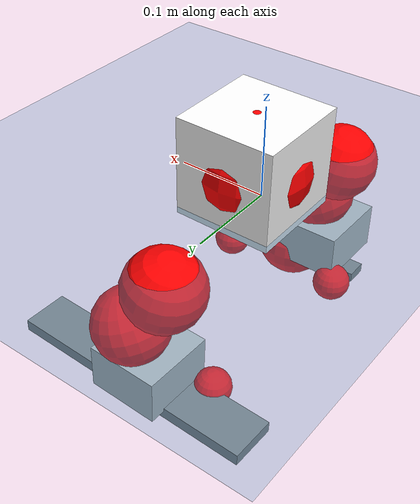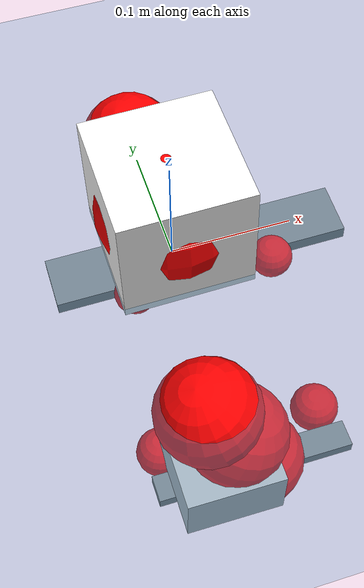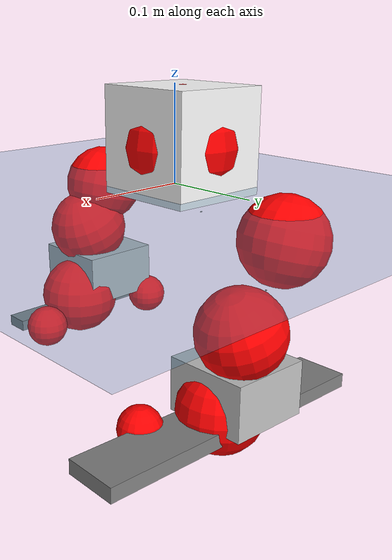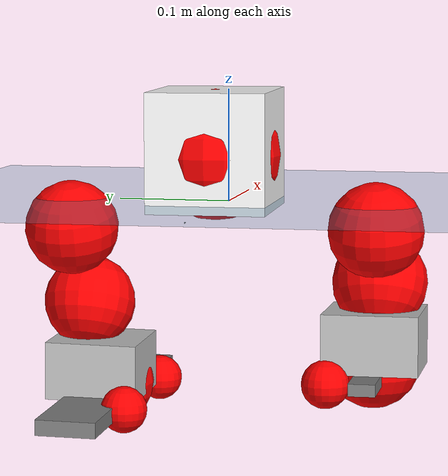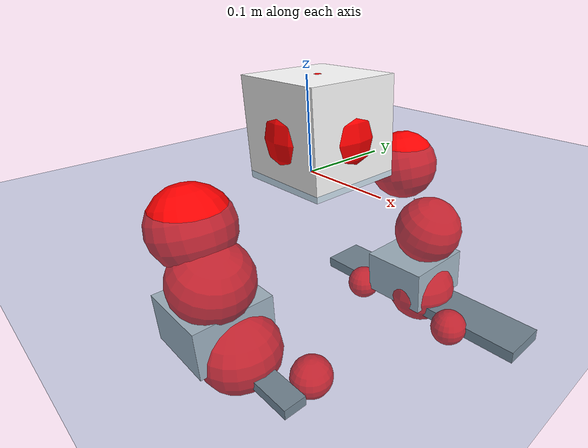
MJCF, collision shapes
<mujoco model="pi_12dof_release_v1">
  <compiler angle="radian" assetdir="assets" balanceinertia="true" inertiafromgeom="false"/>

  <option timestep="0.005" density="1.2" viscosity="2e-05"/>

  <size nkey="1"/>

  <visual>
    <quality shadowsize="8192"/>
    <map shadowclip="0.5"/>
  </visual>

  <default>
    <default class="/">
      <joint armature="0.01" damping="0.01" frictionloss="0.01"/>
      <geom contype="0" conaffinity="0" group="1" solref="-1000 -80"/>
      <site size="0.01 0.005 0.005" group="5"/>
      <general forcelimited="true" biastype="affine" gainprm="20" biasprm="0 -20 -0.5"/>
      <default class="foot">
        <geom size="0.0845 0.036 0.005" type="box" condim="6" group="4" priority="1" friction="0.9 0.2 0.2" solimp="0.015 1 0.005"/>
      </default>
      <default class="reward_collision_sphere">
        <geom group="5" rgba="1 0 0 1"/>
      </default>
    </default>
  </default>

  <asset>
    <texture type="skybox" colorspace="auto" name="//unnamed_texture_0" builtin="gradient" rgb1="0.95 0.95 0.95" rgb2="0.95 0.95 0.95" width="100" height="600"/>
    <texture type="2d" colorspace="auto" name="texplane" builtin="checker" rgb1="0.345 0.575 0.748" rgb2="0.345 0.575 0.748" markrgb="1 1 1" width="512" height="512"/>
    <material name="MatPlane" class="/" texture="texplane" texuniform="true" texrepeat="2 2" specular="0.9"/>
    <mesh name="baselink_1" class="/" file="baselink_1.STL"/>
    <mesh name="r_hip_pitch_link" class="/" file="r_hip_pitch_link.STL"/>
    <mesh name="r_hip_roll_link" class="/" file="r_hip_roll_link.STL"/>
    <mesh name="r_thigh_link" class="/" file="r_thigh_link.STL"/>
    <mesh name="r_calf_link" class="/" file="r_calf_link.STL"/>
    <mesh name="r_ankle_pitch_link" class="/" file="r_ankle_pitch_link.STL"/>
    <mesh name="r_ankle_roll_link" class="/" file="r_ankle_roll_link.STL"/>
    <mesh name="l_hip_pitch_link" class="/" file="l_hip_pitch_link.STL"/>
    <mesh name="l_hip_roll_link" class="/" file="l_hip_roll_link.STL"/>
    <mesh name="l_thigh_link" class="/" file="l_thigh_link.STL"/>
    <mesh name="l_calf_link" class="/" file="l_calf_link.STL"/>
    <mesh name="l_ankle_pitch_link" class="/" file="l_ankle_pitch_link.STL"/>
    <mesh name="l_ankle_roll_link" class="/" file="l_ankle_roll_link.STL"/>
  </asset>

  <worldbody>
    <geom name="floor" class="/" size="100 100 0.125" type="plane" group="0" material="MatPlane"/>
    <light name="toplight_shadow" class="/" pos="0 0 5" dir="0.0990148 0.0990148 -0.990148" type="directional" ambient="0.04 0.04 0.04" diffuse="0.55 0.55 0.55" specular="0.12 0.12 0.12"/>
    <light name="toplight_fill" class="/" pos="0 0 5" dir="0.0990148 0.0990148 -0.990148" type="directional" castshadow="false" ambient="0.04 0.04 0.04" diffuse="0.3 0.3 0.3" specular="0.08 0.08 0.08"/>
    <body name="trunk" pos="0.00246074 0.0125874 0.00805895" quat="0.99998 -0.000174699 -0.00596248 0.00210188">
      <inertial pos="0.0137682 0.0174511 0.00598876" quat="0.723025 0.00270701 -0.0290927 0.690204" mass="2.66183" diaginertia="0.0192943 0.145828 9.55647e-05"/>
      <joint name="//unnamed_joint_0" type="free"/>
      <geom name="//unnamed_geom_1" class="/" type="mesh" density="0" rgba="1 1 1 1" mesh="baselink_1"/>
      <geom name="//unnamed_geom_2" class="/" size="0.0535052 0.0535052 0.0535052" pos="0 0 0.0376524" type="box" rgba="1 1 1 1"/>
      <geom name="//unnamed_geom_3" class="reward_collision_sphere" size="0.0588557" pos="0 0 0.0329459"/>
      <site name="imu" class="/" pos="0.0233028 -0.0188037 -0.0187014" size="0.010701"/>
      <camera name="track" class="/" pos="0 -3.36148 0" quat="0.707107 0.707107 0 0" mode="trackcom"/>
      <camera name="ego_camera" class="/" pos="0.0794186 0 0.0847179" quat="-0.5 -0.5 0.5 0.5"/>
      <body name="r_hip_pitch_link" pos="-0.00445476 -0.0402254 -0.0198236" quat="0.992361 -0.00043398 -0.123365 -0.000976997">
        <inertial pos="0.00123545 -0.0781184 -0.00221971" quat="-0.025571 0.714144 0.0646474 0.696538" mass="0.401438" diaginertia="0.000139264 0.00135986 1.83944e-06"/>
        <joint name="r_hip_pitch_joint" class="/" pos="0 0 0" axis="-0.00194063 -0.999979 -0.00614297" range="-1.99013 1.02344" armature="0.0131195" damping="0" frictionloss="0.00177845"/>
        <geom name="//unnamed_geom_4" class="/" type="mesh" density="0" rgba="0.75294 0.75294 0.75294 1" mesh="r_hip_pitch_link"/>
        <geom name="//unnamed_geom_5" class="/" size="0.000535052 0.000535052 0.000535052" type="box" rgba="0.75294 0.75294 0.75294 1"/>
        <body name="r_hip_roll_link" pos="-0.0143459 -0.106336 -0.00764775" quat="0.99996 -0.00158837 0.00832474 -0.0030105">
          <inertial pos="0.000672423 -0.0175841 -0.0226866" quat="0.722539 -0.111106 -0.0607495 0.679634" mass="0.400817" diaginertia="0.000518489 0.00284297 2.89486e-06"/>
          <joint name="r_hip_roll_joint" class="/" pos="0 0 0" axis="-0.998588 0.0468342 -0.0250632" range="-0.110422 0.480831" armature="0.00241036" damping="0" frictionloss="0.0131681"/>
          <geom name="//unnamed_geom_6" class="/" type="mesh" density="0" rgba="0.75294 0.75294 0.75294 1" mesh="r_hip_roll_link"/>
          <geom name="//unnamed_geom_7" class="/" size="0.000535052 0.000535052 0.000535052" type="box" rgba="0.75294 0.75294 0.75294 1"/>
          <geom name="//unnamed_geom_8" class="reward_collision_sphere" size="0.0428042"/>
          <body name="r_thigh_link" pos="-0.00669938 -0.00647809 -0.0305249" quat="0.999998 0.000901558 -0.00133255 0.00119685">
            <inertial pos="0.0157636 0.014037 -0.00796307" quat="0.765946 0.642895 0.00120446 0.00330923" mass="0.142107" diaginertia="0.00019005 0.00116016 1.62971e-06"/>
            <joint name="r_thigh_joint" class="/" pos="0 0 0" axis="0.00126863 0.0759168 -0.997113" stiffness="0.0844013" range="0.0458356 0.943321" armature="0.00205499" damping="0.0964253" frictionloss="0.00153708"/>
            <geom name="//unnamed_geom_9" class="/" type="mesh" density="0" rgba="0.75294 0.75294 0.75294 1" mesh="r_thigh_link"/>
            <geom name="//unnamed_geom_10" class="/" size="0.000535052 0.000535052 0.000535052" type="box" rgba="0.75294 0.75294 0.75294 1"/>
            <body name="r_calf_link" pos="0.0178676 0.00544857 -0.0224182" quat="0.946804 -0.000163416 0.321805 -0.00209765">
              <inertial pos="0.00513226 -0.0111366 -0.0230697" quat="0.996666 0.00865956 -0.0738262 0.033647" mass="1.07302" diaginertia="0.0052766 0.0469356 3.47968e-06"/>
              <joint name="r_calf_joint" class="/" pos="0 0 0" axis="-0.0914058 -0.995804 0.00428898" stiffness="0.0247702" range="-1.43276 0.76727" armature="0.00968811" damping="0.0466327" frictionloss="0.00199321"/>
              <geom name="//unnamed_geom_11" class="/" type="mesh" density="0" rgba="0.75294 0.75294 0.75294 1" mesh="r_calf_link"/>
              <geom name="//unnamed_geom_12" class="/" size="0.000535052 0.000535052 0.000535052" type="box" rgba="0.75294 0.75294 0.75294 1"/>
              <geom name="//unnamed_geom_13" class="reward_collision_sphere" size="0.0428042"/>
              <body name="r_ankle_pitch_link" pos="0.00937075 0.00287952 -0.050184" quat="0.980069 6.57601e-05 -0.198655 -1.77944e-05">
                <inertial pos="-0.00557802 0.0180949 -0.0164913" quat="0.0383215 0.693219 0.0130993 0.719588" mass="0.196996" diaginertia="0.000479934 0.00298802 2.78116e-06"/>
                <joint name="r_ankle_pitch_joint" class="/" pos="0 0 0" axis="0.0150155 -0.999412 -0.0308293" stiffness="0.0119933" range="-1.04398 0.831002" armature="0.00338487" damping="0" frictionloss="0.00224802"/>
                <geom name="//unnamed_geom_14" class="/" type="mesh" density="0" rgba="0.75294 0.75294 0.75294 1" mesh="r_ankle_pitch_link"/>
                <geom name="//unnamed_geom_15" class="/" size="0.0417341 0.0428042 0.0267526" type="box" rgba="0.75294 0.75294 0.75294 1"/>
                <body name="r_ankle_roll_link" pos="0.0862685 0.00555225 -0.0159167" quat="0.999994 -0.00100228 -0.00072576 0.00308145">
                  <inertial pos="-0.0132216 -0.0120961 -0.0108021" quat="0.562055 0.456039 0.450804 0.522397" mass="0.495915" diaginertia="0.00130299 0.00898187 5.82665e-06"/>
                  <joint name="r_ankle_roll_joint" class="/" pos="0 0 0" axis="-0.995509 -0.0572025 0.0754255" range="-0.511906 -0.135516" armature="0.0132272" damping="0" frictionloss="0.00634625"/>
                  <geom name="//unnamed_geom_16" class="/" type="mesh" density="0" rgba="0.75294 0.75294 0.75294 1" mesh="r_ankle_roll_link"/>
                  <geom name="//unnamed_geom_17" class="/" type="mesh" rgba="0.75294 0.75294 0.75294 1" mesh="r_ankle_roll_link"/>
                  <geom name="right_foot" class="foot" size="0.0875487 0.0120419 0.00549957" pos="-0.0540046 0 -0.0207088"/>
                  <geom name="//unnamed_geom_19" class="reward_collision_sphere" size="0.0428042" pos="-0.0529457 0 -0.0094131"/>
                  <geom name="//unnamed_geom_20" class="reward_collision_sphere" size="0.0214021" pos="0.0158837 0.0336148 -0.0188262"/>
                  <geom name="//unnamed_geom_21" class="reward_collision_sphere" size="0.0214021" pos="-0.12707 0.0336148 -0.0188262"/>
                  <site name="right_foot" class="foot" pos="-0.0540046 0 -0.0207088" size="0.010701"/>
                </body>
              </body>
            </body>
          </body>
        </body>
      </body>
      <body name="l_hip_pitch_link" pos="0.000482921 0.0286745 -0.0292238" quat="0.992153 0.000778709 -0.125017 -0.00134144">
        <inertial pos="-0.00541698 0.098118 -0.0119788" quat="-0.0655628 0.7001 0.00901467 0.710971" mass="0.653326" diaginertia="0.000205468 0.00177666 2.22461e-06"/>
        <joint name="l_hip_pitch_joint" class="/" pos="0 0 0" axis="-0.0395003 0.999094 -0.0158396" range="-1.34179 1.44487" armature="0.0135007" damping="0" frictionloss="0.0117956"/>
        <geom name="//unnamed_geom_22" class="/" type="mesh" density="0" rgba="0.75294 0.75294 0.75294 1" mesh="l_hip_pitch_link"/>
        <geom name="//unnamed_geom_23" class="/" size="0.000535052 0.000535052 0.000535052" type="box" rgba="0.75294 0.75294 0.75294 1"/>
        <body name="l_hip_roll_link" pos="0.00124259 0.10587 -0.00719975" quat="0.999965 -0.00523234 -0.00281604 -0.00582164">
          <inertial pos="-0.0053492 -0.01832 -0.0371252" quat="0.685447 -0.132843 -0.0430119 0.714608" mass="0.583843" diaginertia="0.000508476 0.00321608 2.39966e-06"/>
          <joint name="l_hip_roll_joint" class="/" pos="0 0 0" axis="-0.997901 0.0445476 0.0470088" range="-0.44038 -0.0517088" armature="0.000970424" damping="0" frictionloss="0.0167036"/>
          <geom name="//unnamed_geom_24" class="/" type="mesh" density="0" rgba="0.75294 0.75294 0.75294 1" mesh="l_hip_roll_link"/>
          <geom name="//unnamed_geom_25" class="/" size="0.000535052 0.000535052 0.000535052" type="box" rgba="0.75294 0.75294 0.75294 1"/>
          <geom name="//unnamed_geom_26" class="reward_collision_sphere" size="0.0428042"/>
          <body name="l_thigh_link" pos="0.00975088 2.51882e-05 -0.045631" quat="0.999985 0.00466519 -0.00260706 -0.00119365">
            <inertial pos="-0.00215245 -0.0167098 -0.0180575" quat="0.682963 0.73026 0.0116077 -0.0120913" mass="0.140877" diaginertia="0.000179775 0.0013754 1.45846e-06"/>
            <joint name="l_thigh_joint" class="/" pos="0 0 0" axis="-0.0127192 0.00992937 -0.99987" range="-0.768528 0.150662" armature="0.0172059" damping="0.0882838" frictionloss="0.00625345"/>
            <geom name="//unnamed_geom_27" class="/" type="mesh" density="0" rgba="0.75294 0.75294 0.75294 1" mesh="l_thigh_link"/>
            <geom name="//unnamed_geom_28" class="/" size="0.000535052 0.000535052 0.000535052" type="box" rgba="0.75294 0.75294 0.75294 1"/>
            <body name="l_calf_link" pos="0.0175987 -0.00293456 -0.0402542" quat="0.949042 0.00804029 0.315044 -0.00102941">
              <inertial pos="-0.00350108 0.0145085 -0.0276557" quat="0.999871 0.0125082 -0.000457402 0.010074" mass="1.13766" diaginertia="0.00529741 0.0477829 3.49484e-06"/>
              <joint name="l_calf_joint" class="/" pos="0 0 0" axis="-0.0529715 0.998421 0.0187068" stiffness="0.09175" range="-0.951828 1.82276" armature="0.0154848" damping="0" frictionloss="0.00659558"/>
              <geom name="//unnamed_geom_29" class="/" type="mesh" density="0" rgba="0.75294 0.75294 0.75294 1" mesh="l_calf_link"/>
              <geom name="//unnamed_geom_30" class="/" size="0.000535052 0.000535052 0.000535052" type="box" rgba="0.75294 0.75294 0.75294 1"/>
              <geom name="//unnamed_geom_31" class="reward_collision_sphere" size="0.0428042"/>
              <body name="l_ankle_pitch_link" pos="0.0128799 -0.0140216 -0.0575481" quat="0.980643 -0.00275705 -0.19577 0.00233136">
                <inertial pos="0.00320406 0.0123869 0.00428541" quat="0.0228156 0.703992 0.0140771 0.709702" mass="0.177539" diaginertia="0.000397028 0.00298424 2.92196e-06"/>
                <joint name="l_ankle_pitch_joint" class="/" pos="0 0 0" axis="-0.00346979 0.999778 -0.0207743" range="-0.399462 1.36521" armature="0.0184369" damping="0" frictionloss="0.0171109"/>
                <geom name="//unnamed_geom_32" class="/" type="mesh" density="0" rgba="0.75294 0.75294 0.75294 1" mesh="l_ankle_pitch_link"/>
                <geom name="//unnamed_geom_33" class="/" size="0.0417341 0.0428042 0.0267526" type="box" rgba="0.75294 0.75294 0.75294 1"/>
                <body name="l_ankle_roll_link" pos="0.0681963 -0.00330034 -0.00972401" quat="0.999997 -0.00138422 0.0014803 -0.00109649">
                  <inertial pos="-0.0138301 -0.00500457 -0.0060612" quat="0.558795 0.428166 0.434735 0.561629" mass="0.529938" diaginertia="0.00134659 0.0119065 6.84176e-06"/>
                  <joint name="l_ankle_roll_joint" class="/" pos="0 0 0" axis="-0.999748 -0.00114618 -0.0224295" range="-0.502764 0.113571" armature="0.0134152" damping="0.0975089" frictionloss="0.0154246"/>
                  <geom name="//unnamed_geom_34" class="/" type="mesh" density="0" rgba="0.75294 0.75294 0.75294 1" mesh="l_ankle_roll_link"/>
                  <geom name="//unnamed_geom_35" class="/" type="mesh" rgba="0.75294 0.75294 0.75294 1" mesh="l_ankle_roll_link"/>
                  <geom name="left_foot" class="foot" size="0.150998 0.0275713 0.00714202" pos="-0.0540046 0 -0.0207088"/>
                  <geom name="//unnamed_geom_37" class="reward_collision_sphere" size="0.0428042" pos="-0.0529457 0 -0.0094131"/>
                  <geom name="//unnamed_geom_38" class="reward_collision_sphere" size="0.0214021" pos="0.0158837 -0.0336148 -0.0188262"/>
                  <geom name="//unnamed_geom_39" class="reward_collision_sphere" size="0.0214021" pos="-0.12707 -0.0336148 -0.0188262"/>
                  <site name="left_foot" class="foot" pos="-0.0540046 0 -0.0207088" size="0.010701"/>
                </body>
              </body>
            </body>
          </body>
        </body>
      </body>
    </body>
  </worldbody>

  <contact>
    <pair class="/" geom1="floor" geom2="right_foot" name="//unnamed_contact_1"/>
    <pair class="/" geom1="floor" geom2="left_foot" name="//unnamed_contact_0"/>
  </contact>

  <actuator>
    <general name="r_hip_pitch_joint" class="/" joint="r_hip_pitch_joint" forcerange="-30.4202 30.4202" gainprm="26.8292" biasprm="0 -26.8292 -0.429566"/>
    <general name="r_hip_roll_joint" class="/" joint="r_hip_roll_joint" forcerange="-7.35349 7.35349" gainprm="26.8292" biasprm="0 -26.8292 -0.429566"/>
    <general name="r_thigh_joint" class="/" joint="r_thigh_joint" forcerange="-21.522 21.522" gainprm="26.8292" biasprm="0 -26.8292 -0.429566"/>
    <general name="r_calf_joint" class="/" joint="r_calf_joint" forcerange="-18.9953 18.9953" gainprm="26.8292" biasprm="0 -26.8292 -0.429566"/>
    <general name="r_ankle_pitch_joint" class="/" joint="r_ankle_pitch_joint" forcerange="-22.5421 22.5421" gainprm="26.8292" biasprm="0 -26.8292 -0.429566"/>
    <general name="r_ankle_roll_joint" class="/" joint="r_ankle_roll_joint" forcerange="-10.7626 10.7626" gainprm="26.8292" biasprm="0 -26.8292 -0.429566"/>
    <general name="l_hip_pitch_joint" class="/" joint="l_hip_pitch_joint" forcerange="-13.9611 13.9611" gainprm="26.8292" biasprm="0 -26.8292 -0.429566"/>
    <general name="l_hip_roll_joint" class="/" joint="l_hip_roll_joint" forcerange="-23.7211 23.7211" gainprm="26.8292" biasprm="0 -26.8292 -0.429566"/>
    <general name="l_thigh_joint" class="/" joint="l_thigh_joint" forcerange="-19.5318 19.5318" gainprm="26.8292" biasprm="0 -26.8292 -0.429566"/>
    <general name="l_calf_joint" class="/" joint="l_calf_joint" forcerange="-31.4607 31.4607" gainprm="26.8292" biasprm="0 -26.8292 -0.429566"/>
    <general name="l_ankle_pitch_joint" class="/" joint="l_ankle_pitch_joint" forcerange="-25.1735 25.1735" gainprm="26.8292" biasprm="0 -26.8292 -0.429566"/>
    <general name="l_ankle_roll_joint" class="/" joint="l_ankle_roll_joint" forcerange="-33.8072 33.8072" gainprm="26.8292" biasprm="0 -26.8292 -0.429566"/>
  </actuator>

  <sensor>
    <gyro site="imu" name="imu_angular_velocity"/>
    <velocimeter site="imu" name="imu_linear_velocity"/>
    <framelinvel objtype="site" objname="left_foot" name="left_foot_global_linear_velocity"/>
    <framelinvel objtype="site" objname="right_foot" name="right_foot_global_linear_velocity"/>
  </sensor>

  <keyframe>
    <key name="home" qpos="0 0 0.291 1 0 0 0 0.4 0 0 -0.8 0.4 0 -0.4 0 0 0.8 -0.4 0"/>
  </keyframe>
</mujoco>
